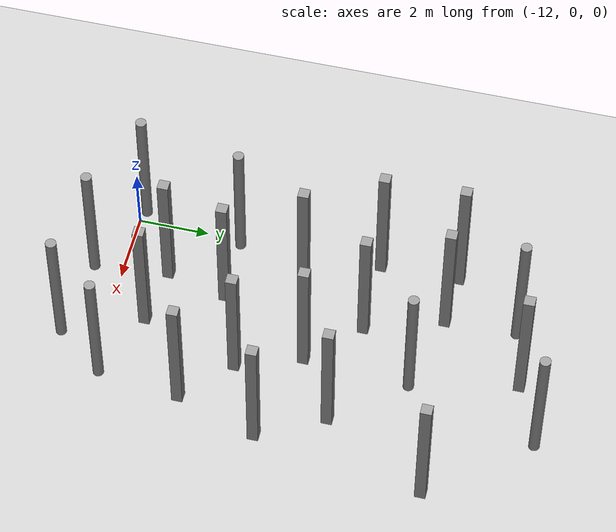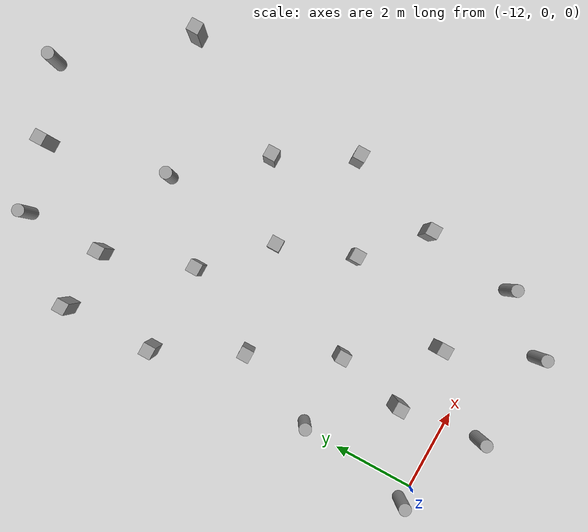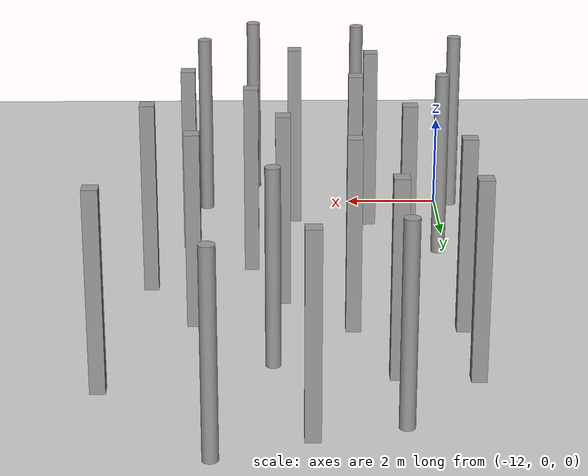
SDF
<sdf version="1.6">
 <world name="default">
  <model name="ground_plane">
   <static>1</static>
   <link name="link">
    <collision name="collision">
     <geometry><plane><normal>0 0 1</normal><size>100 100</size></plane></geometry>
    </collision>
    <visual name="visual">
     <cast_shadows>0</cast_shadows>
     <geometry><plane><normal>0 0 1</normal><size>100 100</size></plane></geometry>
     <material>
      <script><uri>file://media/materials/scripts/gazebo.material</uri><name>Gazebo/Gray</name></script>
     </material>
    </visual>
   </link>
  </model>
  <model name="unit_box_clone_3">
   <link name="link">
    <inertial>
     <mass>1000</mass>
     <inertia><ixx>166.667</ixx><ixy>0</ixy><ixz>0</ixz><iyy>166.667</iyy><iyz>0</iyz><izz>166.667</izz></inertia>
    </inertial>
    <visual name="visual">
     <geometry><box><size>0.3 0.3 4</size></box></geometry>
     <material>
      <script><name>Gazebo/Grey</name><uri>file://media/materials/scripts/gazebo.material</uri></script>
      <shader type="vertex"><normal_map>__default__</normal_map></shader>
      <ambient>0.3 0.3 0.3 1</ambient>
      <diffuse>0.7 0.7 0.7 1</diffuse>
      <specular>0.01 0.01 0.01 1</specular>
      <emissive>0 0 0 1</emissive>
     </material>
    </visual>
    <collision name="collision">
     <geometry><box><size>0.3 0.3 4</size></box></geometry>
     <surface>
      <friction>
       <ode><mu>1</mu><mu2>1</mu2><fdir1>0 0 0</fdir1><slip1>0</slip1><slip2>0</slip2></ode>
       <torsional>
        <coefficient>1</coefficient>
        <patch_radius>0</patch_radius>
        <surface_radius>0</surface_radius>
        <use_patch_radius>1</use_patch_radius>
        <ode><slip>0</slip></ode>
       </torsional>
      </friction>
      <bounce><restitution_coefficient>0</restitution_coefficient><threshold>1e+06</threshold></bounce>
      <contact>
       <collide_without_contact>0</collide_without_contact>
       <collide_without_contact_bitmask>1</collide_without_contact_bitmask>
       <collide_bitmask>1</collide_bitmask>
       <ode>
        <soft_cfm>0</soft_cfm>
        <soft_erp>0.2</soft_erp>
        <kp>1e+13</kp>
        <kd>1</kd>
        <max_vel>0.01</max_vel>
        <min_depth>0</min_depth>
       </ode>
       <bullet>
        <split_impulse>1</split_impulse>
        <split_impulse_penetration_threshold>-0.01</split_impulse_penetration_threshold>
        <soft_cfm>0</soft_cfm>
        <soft_erp>0.2</soft_erp>
        <kp>1e+13</kp>
        <kd>1</kd>
       </bullet>
      </contact>
     </surface>
    </collision>
   </link>
   <static>0</static>
   <pose>-9.81583 6.97363 2 -1.8e-05 -9e-06 -0.002993</pose>
  </model>
  <model name="unit_box_clone_4">
   <link name="link">
    <inertial>
     <mass>1000</mass>
     <inertia><ixx>166.667</ixx><ixy>0</ixy><ixz>0</ixz><iyy>166.667</iyy><iyz>0</iyz><izz>166.667</izz></inertia>
    </inertial>
    <visual name="visual">
     <geometry><box><size>0.3 0.3 4</size></box></geometry>
     <material>
      <script><name>Gazebo/Grey</name><uri>file://media/materials/scripts/gazebo.material</uri></script>
      <shader type="vertex"><normal_map>__default__</normal_map></shader>
      <ambient>0.3 0.3 0.3 1</ambient>
      <diffuse>0.7 0.7 0.7 1</diffuse>
      <specular>0.01 0.01 0.01 1</specular>
      <emissive>0 0 0 1</emissive>
     </material>
    </visual>
    <collision name="collision">
     <geometry><box><size>0.3 0.3 4</size></box></geometry>
     <surface>
      <friction>
       <ode><mu>1</mu><mu2>1</mu2><fdir1>0 0 0</fdir1><slip1>0</slip1><slip2>0</slip2></ode>
       <torsional>
        <coefficient>1</coefficient>
        <patch_radius>0</patch_radius>
        <surface_radius>0</surface_radius>
        <use_patch_radius>1</use_patch_radius>
        <ode><slip>0</slip></ode>
       </torsional>
      </friction>
      <bounce><restitution_coefficient>0</restitution_coefficient><threshold>1e+06</threshold></bounce>
      <contact>
       <collide_without_contact>0</collide_without_contact>
       <collide_without_contact_bitmask>1</collide_without_contact_bitmask>
       <collide_bitmask>1</collide_bitmask>
       <ode>
        <soft_cfm>0</soft_cfm>
        <soft_erp>0.2</soft_erp>
        <kp>1e+13</kp>
        <kd>1</kd>
        <max_vel>0.01</max_vel>
        <min_depth>0</min_depth>
       </ode>
       <bullet>
        <split_impulse>1</split_impulse>
        <split_impulse_penetration_threshold>-0.01</split_impulse_penetration_threshold>
        <soft_cfm>0</soft_cfm>
        <soft_erp>0.2</soft_erp>
        <kp>1e+13</kp>
        <kd>1</kd>
       </bullet>
      </contact>
     </surface>
    </collision>
   </link>
   <static>0</static>
   <pose>-12.064 9.20916 2 -2e-06 4e-06 -0.003091</pose>
  </model>
  <model name="unit_box_clone_8">
   <link name="link">
    <inertial>
     <mass>1000</mass>
     <inertia><ixx>166.667</ixx><ixy>0</ixy><ixz>0</ixz><iyy>166.667</iyy><iyz>0</iyz><izz>166.667</izz></inertia>
    </inertial>
    <visual name="visual">
     <geometry><box><size>0.3 0.3 4</size></box></geometry>
     <material>
      <script><name>Gazebo/Grey</name><uri>file://media/materials/scripts/gazebo.material</uri></script>
      <shader type="vertex"><normal_map>__default__</normal_map></shader>
      <ambient>0.3 0.3 0.3 1</ambient>
      <diffuse>0.7 0.7 0.7 1</diffuse>
      <specular>0.01 0.01 0.01 1</specular>
      <emissive>0 0 0 1</emissive>
     </material>
    </visual>
    <collision name="collision">
     <geometry><box><size>0.3 0.3 4</size></box></geometry>
     <surface>
      <friction>
       <ode><mu>1</mu><mu2>1</mu2><fdir1>0 0 0</fdir1><slip1>0</slip1><slip2>0</slip2></ode>
       <torsional>
        <coefficient>1</coefficient>
        <patch_radius>0</patch_radius>
        <surface_radius>0</surface_radius>
        <use_patch_radius>1</use_patch_radius>
        <ode><slip>0</slip></ode>
       </torsional>
      </friction>
      <bounce><restitution_coefficient>0</restitution_coefficient><threshold>1e+06</threshold></bounce>
      <contact>
       <collide_without_contact>0</collide_without_contact>
       <collide_without_contact_bitmask>1</collide_without_contact_bitmask>
       <collide_bitmask>1</collide_bitmask>
       <ode>
        <soft_cfm>0</soft_cfm>
        <soft_erp>0.2</soft_erp>
        <kp>1e+13</kp>
        <kd>1</kd>
        <max_vel>0.01</max_vel>
        <min_depth>0</min_depth>
       </ode>
       <bullet>
        <split_impulse>1</split_impulse>
        <split_impulse_penetration_threshold>-0.01</split_impulse_penetration_threshold>
        <soft_cfm>0</soft_cfm>
        <soft_erp>0.2</soft_erp>
        <kp>1e+13</kp>
        <kd>1</kd>
       </bullet>
      </contact>
     </surface>
    </collision>
   </link>
   <static>0</static>
   <pose>-6.68888 6.67579 2 -5e-06 -0 -0.003022</pose>
  </model>
  <model name="unit_box_clone_9">
   <link name="link">
    <inertial>
     <mass>1000</mass>
     <inertia><ixx>166.667</ixx><ixy>0</ixy><ixz>0</ixz><iyy>166.667</iyy><iyz>0</iyz><izz>166.667</izz></inertia>
    </inertial>
    <visual name="visual">
     <geometry><box><size>0.3 0.3 4</size></box></geometry>
     <material>
      <script><name>Gazebo/Grey</name><uri>file://media/materials/scripts/gazebo.material</uri></script>
      <shader type="vertex"><normal_map>__default__</normal_map></shader>
      <ambient>0.3 0.3 0.3 1</ambient>
      <diffuse>0.7 0.7 0.7 1</diffuse>
      <specular>0.01 0.01 0.01 1</specular>
      <emissive>0 0 0 1</emissive>
     </material>
    </visual>
    <collision name="collision">
     <geometry><box><size>0.3 0.3 4</size></box></geometry>
     <surface>
      <friction>
       <ode><mu>1</mu><mu2>1</mu2><fdir1>0 0 0</fdir1><slip1>0</slip1><slip2>0</slip2></ode>
       <torsional>
        <coefficient>1</coefficient>
        <patch_radius>0</patch_radius>
        <surface_radius>0</surface_radius>
        <use_patch_radius>1</use_patch_radius>
        <ode><slip>0</slip></ode>
       </torsional>
      </friction>
      <bounce><restitution_coefficient>0</restitution_coefficient><threshold>1e+06</threshold></bounce>
      <contact>
       <collide_without_contact>0</collide_without_contact>
       <collide_without_contact_bitmask>1</collide_without_contact_bitmask>
       <collide_bitmask>1</collide_bitmask>
       <ode>
        <soft_cfm>0</soft_cfm>
        <soft_erp>0.2</soft_erp>
        <kp>1e+13</kp>
        <kd>1</kd>
        <max_vel>0.01</max_vel>
        <min_depth>0</min_depth>
       </ode>
       <bullet>
        <split_impulse>1</split_impulse>
        <split_impulse_penetration_threshold>-0.01</split_impulse_penetration_threshold>
        <soft_cfm>0</soft_cfm>
        <soft_erp>0.2</soft_erp>
        <kp>1e+13</kp>
        <kd>1</kd>
       </bullet>
      </contact>
     </surface>
    </collision>
   </link>
   <static>0</static>
   <pose>-8.44972 5.60761 2 1.2e-05 2e-06 -0.001522</pose>
  </model>
  <model name="unit_box_clone_10">
   <link name="link">
    <inertial>
     <mass>1000</mass>
     <inertia><ixx>166.667</ixx><ixy>0</ixy><ixz>0</ixz><iyy>166.667</iyy><iyz>0</iyz><izz>166.667</izz></inertia>
    </inertial>
    <visual name="visual">
     <geometry><box><size>0.3 0.3 4</size></box></geometry>
     <material>
      <script><name>Gazebo/Grey</name><uri>file://media/materials/scripts/gazebo.material</uri></script>
      <shader type="vertex"><normal_map>__default__</normal_map></shader>
      <ambient>0.3 0.3 0.3 1</ambient>
      <diffuse>0.7 0.7 0.7 1</diffuse>
      <specular>0.01 0.01 0.01 1</specular>
      <emissive>0 0 0 1</emissive>
     </material>
    </visual>
    <collision name="collision">
     <geometry><box><size>0.3 0.3 4</size></box></geometry>
     <surface>
      <friction>
       <ode><mu>1</mu><mu2>1</mu2><fdir1>0 0 0</fdir1><slip1>0</slip1><slip2>0</slip2></ode>
       <torsional>
        <coefficient>1</coefficient>
        <patch_radius>0</patch_radius>
        <surface_radius>0</surface_radius>
        <use_patch_radius>1</use_patch_radius>
        <ode><slip>0</slip></ode>
       </torsional>
      </friction>
      <bounce><restitution_coefficient>0</restitution_coefficient><threshold>1e+06</threshold></bounce>
      <contact>
       <collide_without_contact>0</collide_without_contact>
       <collide_without_contact_bitmask>1</collide_without_contact_bitmask>
       <collide_bitmask>1</collide_bitmask>
       <ode>
        <soft_cfm>0</soft_cfm>
        <soft_erp>0.2</soft_erp>
        <kp>1e+13</kp>
        <kd>1</kd>
        <max_vel>0.01</max_vel>
        <min_depth>0</min_depth>
       </ode>
       <bullet>
        <split_impulse>1</split_impulse>
        <split_impulse_penetration_threshold>-0.01</split_impulse_penetration_threshold>
        <soft_cfm>0</soft_cfm>
        <soft_erp>0.2</soft_erp>
        <kp>1e+13</kp>
        <kd>1</kd>
       </bullet>
      </contact>
     </surface>
    </collision>
   </link>
   <static>0</static>
   <pose>-8.91738 11.4995 2 4e-06 -0 -0.003322</pose>
  </model>
  <model name="unit_box_clone_11">
   <link name="link">
    <inertial>
     <mass>1000</mass>
     <inertia><ixx>166.667</ixx><ixy>0</ixy><ixz>0</ixz><iyy>166.667</iyy><iyz>0</iyz><izz>166.667</izz></inertia>
    </inertial>
    <visual name="visual">
     <geometry><box><size>0.3 0.3 4</size></box></geometry>
     <material>
      <script><name>Gazebo/Grey</name><uri>file://media/materials/scripts/gazebo.material</uri></script>
      <shader type="vertex"><normal_map>__default__</normal_map></shader>
      <ambient>0.3 0.3 0.3 1</ambient>
      <diffuse>0.7 0.7 0.7 1</diffuse>
      <specular>0.01 0.01 0.01 1</specular>
      <emissive>0 0 0 1</emissive>
     </material>
    </visual>
    <collision name="collision">
     <geometry><box><size>0.3 0.3 4</size></box></geometry>
     <surface>
      <friction>
       <ode><mu>1</mu><mu2>1</mu2><fdir1>0 0 0</fdir1><slip1>0</slip1><slip2>0</slip2></ode>
       <torsional>
        <coefficient>1</coefficient>
        <patch_radius>0</patch_radius>
        <surface_radius>0</surface_radius>
        <use_patch_radius>1</use_patch_radius>
        <ode><slip>0</slip></ode>
       </torsional>
      </friction>
      <bounce><restitution_coefficient>0</restitution_coefficient><threshold>1e+06</threshold></bounce>
      <contact>
       <collide_without_contact>0</collide_without_contact>
       <collide_without_contact_bitmask>1</collide_without_contact_bitmask>
       <collide_bitmask>1</collide_bitmask>
       <ode>
        <soft_cfm>0</soft_cfm>
        <soft_erp>0.2</soft_erp>
        <kp>1e+13</kp>
        <kd>1</kd>
        <max_vel>0.01</max_vel>
        <min_depth>0</min_depth>
       </ode>
       <bullet>
        <split_impulse>1</split_impulse>
        <split_impulse_penetration_threshold>-0.01</split_impulse_penetration_threshold>
        <soft_cfm>0</soft_cfm>
        <soft_erp>0.2</soft_erp>
        <kp>1e+13</kp>
        <kd>1</kd>
       </bullet>
      </contact>
     </surface>
    </collision>
   </link>
   <static>0</static>
   <pose>-10.559 9.10964 2 -2e-06 6e-06 0.004379</pose>
  </model>
  <model name="unit_box_clone_12">
   <link name="link">
    <inertial>
     <mass>1000</mass>
     <inertia><ixx>166.667</ixx><ixy>0</ixy><ixz>0</ixz><iyy>166.667</iyy><iyz>0</iyz><izz>166.667</izz></inertia>
    </inertial>
    <visual name="visual">
     <geometry><box><size>0.3 0.3 4</size></box></geometry>
     <material>
      <script><name>Gazebo/Grey</name><uri>file://media/materials/scripts/gazebo.material</uri></script>
      <shader type="vertex"><normal_map>__default__</normal_map></shader>
      <ambient>0.3 0.3 0.3 1</ambient>
      <diffuse>0.7 0.7 0.7 1</diffuse>
      <specular>0.01 0.01 0.01 1</specular>
      <emissive>0 0 0 1</emissive>
     </material>
    </visual>
    <collision name="collision">
     <geometry><box><size>0.3 0.3 4</size></box></geometry>
     <surface>
      <friction>
       <ode><mu>1</mu><mu2>1</mu2><fdir1>0 0 0</fdir1><slip1>0</slip1><slip2>0</slip2></ode>
       <torsional>
        <coefficient>1</coefficient>
        <patch_radius>0</patch_radius>
        <surface_radius>0</surface_radius>
        <use_patch_radius>1</use_patch_radius>
        <ode><slip>0</slip></ode>
       </torsional>
      </friction>
      <bounce><restitution_coefficient>0</restitution_coefficient><threshold>1e+06</threshold></bounce>
      <contact>
       <collide_without_contact>0</collide_without_contact>
       <collide_without_contact_bitmask>1</collide_without_contact_bitmask>
       <collide_bitmask>1</collide_bitmask>
       <ode>
        <soft_cfm>0</soft_cfm>
        <soft_erp>0.2</soft_erp>
        <kp>1e+13</kp>
        <kd>1</kd>
        <max_vel>0.01</max_vel>
        <min_depth>0</min_depth>
       </ode>
       <bullet>
        <split_impulse>1</split_impulse>
        <split_impulse_penetration_threshold>-0.01</split_impulse_penetration_threshold>
        <soft_cfm>0</soft_cfm>
        <soft_erp>0.2</soft_erp>
        <kp>1e+13</kp>
        <kd>1</kd>
       </bullet>
      </contact>
     </surface>
    </collision>
   </link>
   <static>0</static>
   <pose>-6.46638 2.58977 2 6e-06 -1.6e-05 -0.001869</pose>
  </model>
  <model name="unit_box_clone_13">
   <link name="link">
    <inertial>
     <mass>1000</mass>
     <inertia><ixx>166.667</ixx><ixy>0</ixy><ixz>0</ixz><iyy>166.667</iyy><iyz>0</iyz><izz>166.667</izz></inertia>
    </inertial>
    <visual name="visual">
     <geometry><box><size>0.3 0.3 4</size></box></geometry>
     <material>
      <script><name>Gazebo/Grey</name><uri>file://media/materials/scripts/gazebo.material</uri></script>
      <shader type="vertex"><normal_map>__default__</normal_map></shader>
      <ambient>0.3 0.3 0.3 1</ambient>
      <diffuse>0.7 0.7 0.7 1</diffuse>
      <specular>0.01 0.01 0.01 1</specular>
      <emissive>0 0 0 1</emissive>
     </material>
    </visual>
    <collision name="collision">
     <geometry><box><size>0.3 0.3 4</size></box></geometry>
     <surface>
      <friction>
       <ode><mu>1</mu><mu2>1</mu2><fdir1>0 0 0</fdir1><slip1>0</slip1><slip2>0</slip2></ode>
       <torsional>
        <coefficient>1</coefficient>
        <patch_radius>0</patch_radius>
        <surface_radius>0</surface_radius>
        <use_patch_radius>1</use_patch_radius>
        <ode><slip>0</slip></ode>
       </torsional>
      </friction>
      <bounce><restitution_coefficient>0</restitution_coefficient><threshold>1e+06</threshold></bounce>
      <contact>
       <collide_without_contact>0</collide_without_contact>
       <collide_without_contact_bitmask>1</collide_without_contact_bitmask>
       <collide_bitmask>1</collide_bitmask>
       <ode>
        <soft_cfm>0</soft_cfm>
        <soft_erp>0.2</soft_erp>
        <kp>1e+13</kp>
        <kd>1</kd>
        <max_vel>0.01</max_vel>
        <min_depth>0</min_depth>
       </ode>
       <bullet>
        <split_impulse>1</split_impulse>
        <split_impulse_penetration_threshold>-0.01</split_impulse_penetration_threshold>
        <soft_cfm>0</soft_cfm>
        <soft_erp>0.2</soft_erp>
        <kp>1e+13</kp>
        <kd>1</kd>
       </bullet>
      </contact>
     </surface>
    </collision>
   </link>
   <static>0</static>
   <pose>-10.0001 3.0001 2 -1e-06 -7e-06 -0.003577</pose>
  </model>
  <model name="unit_box_clone_14">
   <link name="link">
    <inertial>
     <mass>1000</mass>
     <inertia><ixx>166.667</ixx><ixy>0</ixy><ixz>0</ixz><iyy>166.667</iyy><iyz>0</iyz><izz>166.667</izz></inertia>
    </inertial>
    <visual name="visual">
     <geometry><box><size>0.3 0.3 4</size></box></geometry>
     <material>
      <script><name>Gazebo/Grey</name><uri>file://media/materials/scripts/gazebo.material</uri></script>
      <shader type="vertex"><normal_map>__default__</normal_map></shader>
      <ambient>0.3 0.3 0.3 1</ambient>
      <diffuse>0.7 0.7 0.7 1</diffuse>
      <specular>0.01 0.01 0.01 1</specular>
      <emissive>0 0 0 1</emissive>
     </material>
    </visual>
    <collision name="collision">
     <geometry><box><size>0.3 0.3 4</size></box></geometry>
     <surface>
      <friction>
       <ode><mu>1</mu><mu2>1</mu2><fdir1>0 0 0</fdir1><slip1>0</slip1><slip2>0</slip2></ode>
       <torsional>
        <coefficient>1</coefficient>
        <patch_radius>0</patch_radius>
        <surface_radius>0</surface_radius>
        <use_patch_radius>1</use_patch_radius>
        <ode><slip>0</slip></ode>
       </torsional>
      </friction>
      <bounce><restitution_coefficient>0</restitution_coefficient><threshold>1e+06</threshold></bounce>
      <contact>
       <collide_without_contact>0</collide_without_contact>
       <collide_without_contact_bitmask>1</collide_without_contact_bitmask>
       <collide_bitmask>1</collide_bitmask>
       <ode>
        <soft_cfm>0</soft_cfm>
        <soft_erp>0.2</soft_erp>
        <kp>1e+13</kp>
        <kd>1</kd>
        <max_vel>0.01</max_vel>
        <min_depth>0</min_depth>
       </ode>
       <bullet>
        <split_impulse>1</split_impulse>
        <split_impulse_penetration_threshold>-0.01</split_impulse_penetration_threshold>
        <soft_cfm>0</soft_cfm>
        <soft_erp>0.2</soft_erp>
        <kp>1e+13</kp>
        <kd>1</kd>
       </bullet>
      </contact>
     </surface>
    </collision>
   </link>
   <static>0</static>
   <pose>-11.9999 7.00014 2 -9e-06 -2e-06 -0.001109</pose>
  </model>
  <model name="unit_box_clone_15">
   <link name="link">
    <inertial>
     <mass>1000</mass>
     <inertia><ixx>166.667</ixx><ixy>0</ixy><ixz>0</ixz><iyy>166.667</iyy><iyz>0</iyz><izz>166.667</izz></inertia>
    </inertial>
    <visual name="visual">
     <geometry><box><size>0.3 0.3 4</size></box></geometry>
     <material>
      <script><name>Gazebo/Grey</name><uri>file://media/materials/scripts/gazebo.material</uri></script>
      <shader type="vertex"><normal_map>__default__</normal_map></shader>
      <ambient>0.3 0.3 0.3 1</ambient>
      <diffuse>0.7 0.7 0.7 1</diffuse>
      <specular>0.01 0.01 0.01 1</specular>
      <emissive>0 0 0 1</emissive>
     </material>
    </visual>
    <collision name="collision">
     <geometry><box><size>0.3 0.3 4</size></box></geometry>
     <surface>
      <friction>
       <ode><mu>1</mu><mu2>1</mu2><fdir1>0 0 0</fdir1><slip1>0</slip1><slip2>0</slip2></ode>
       <torsional>
        <coefficient>1</coefficient>
        <patch_radius>0</patch_radius>
        <surface_radius>0</surface_radius>
        <use_patch_radius>1</use_patch_radius>
        <ode><slip>0</slip></ode>
       </torsional>
      </friction>
      <bounce><restitution_coefficient>0</restitution_coefficient><threshold>1e+06</threshold></bounce>
      <contact>
       <collide_without_contact>0</collide_without_contact>
       <collide_without_contact_bitmask>1</collide_without_contact_bitmask>
       <collide_bitmask>1</collide_bitmask>
       <ode>
        <soft_cfm>0</soft_cfm>
        <soft_erp>0.2</soft_erp>
        <kp>1e+13</kp>
        <kd>1</kd>
        <max_vel>0.01</max_vel>
        <min_depth>0</min_depth>
       </ode>
       <bullet>
        <split_impulse>1</split_impulse>
        <split_impulse_penetration_threshold>-0.01</split_impulse_penetration_threshold>
        <soft_cfm>0</soft_cfm>
        <soft_erp>0.2</soft_erp>
        <kp>1e+13</kp>
        <kd>1</kd>
       </bullet>
      </contact>
     </surface>
    </collision>
   </link>
   <static>0</static>
   <pose>-8.74152 1.0488 2 -2e-06 0 0.000224</pose>
  </model>
  <model name="unit_box_clone_16">
   <link name="link">
    <inertial>
     <mass>1000</mass>
     <inertia><ixx>166.667</ixx><ixy>0</ixy><ixz>0</ixz><iyy>166.667</iyy><iyz>0</iyz><izz>166.667</izz></inertia>
    </inertial>
    <visual name="visual">
     <geometry><box><size>0.3 0.3 4</size></box></geometry>
     <material>
      <script><name>Gazebo/Grey</name><uri>file://media/materials/scripts/gazebo.material</uri></script>
      <shader type="vertex"><normal_map>__default__</normal_map></shader>
      <ambient>0.3 0.3 0.3 1</ambient>
      <diffuse>0.7 0.7 0.7 1</diffuse>
      <specular>0.01 0.01 0.01 1</specular>
      <emissive>0 0 0 1</emissive>
     </material>
    </visual>
    <collision name="collision">
     <geometry><box><size>0.3 0.3 4</size></box></geometry>
     <surface>
      <friction>
       <ode><mu>1</mu><mu2>1</mu2><fdir1>0 0 0</fdir1><slip1>0</slip1><slip2>0</slip2></ode>
       <torsional>
        <coefficient>1</coefficient>
        <patch_radius>0</patch_radius>
        <surface_radius>0</surface_radius>
        <use_patch_radius>1</use_patch_radius>
        <ode><slip>0</slip></ode>
       </torsional>
      </friction>
      <bounce><restitution_coefficient>0</restitution_coefficient><threshold>1e+06</threshold></bounce>
      <contact>
       <collide_without_contact>0</collide_without_contact>
       <collide_without_contact_bitmask>1</collide_without_contact_bitmask>
       <collide_bitmask>1</collide_bitmask>
       <ode>
        <soft_cfm>0</soft_cfm>
        <soft_erp>0.2</soft_erp>
        <kp>1e+13</kp>
        <kd>1</kd>
        <max_vel>0.01</max_vel>
        <min_depth>0</min_depth>
       </ode>
       <bullet>
        <split_impulse>1</split_impulse>
        <split_impulse_penetration_threshold>-0.01</split_impulse_penetration_threshold>
        <soft_cfm>0</soft_cfm>
        <soft_erp>0.2</soft_erp>
        <kp>1e+13</kp>
        <kd>1</kd>
       </bullet>
      </contact>
     </surface>
    </collision>
   </link>
   <static>0</static>
   <pose>-10.9999 5.00014 2 -9e-06 -2e-06 -0.001109</pose>
  </model>
  <model name="unit_box_clone_18">
   <link name="link">
    <inertial>
     <mass>1000</mass>
     <inertia><ixx>166.667</ixx><ixy>0</ixy><ixz>0</ixz><iyy>166.667</iyy><iyz>0</iyz><izz>166.667</izz></inertia>
    </inertial>
    <visual name="visual">
     <geometry><box><size>0.3 0.3 4</size></box></geometry>
     <material>
      <script><name>Gazebo/Grey</name><uri>file://media/materials/scripts/gazebo.material</uri></script>
      <shader type="vertex"><normal_map>__default__</normal_map></shader>
      <ambient>0.3 0.3 0.3 1</ambient>
      <diffuse>0.7 0.7 0.7 1</diffuse>
      <specular>0.01 0.01 0.01 1</specular>
      <emissive>0 0 0 1</emissive>
     </material>
    </visual>
    <collision name="collision">
     <geometry><box><size>0.3 0.3 4</size></box></geometry>
     <surface>
      <friction>
       <ode><mu>1</mu><mu2>1</mu2><fdir1>0 0 0</fdir1><slip1>0</slip1><slip2>0</slip2></ode>
       <torsional>
        <coefficient>1</coefficient>
        <patch_radius>0</patch_radius>
        <surface_radius>0</surface_radius>
        <use_patch_radius>1</use_patch_radius>
        <ode><slip>0</slip></ode>
       </torsional>
      </friction>
      <bounce><restitution_coefficient>0</restitution_coefficient><threshold>1e+06</threshold></bounce>
      <contact>
       <collide_without_contact>0</collide_without_contact>
       <collide_without_contact_bitmask>1</collide_without_contact_bitmask>
       <collide_bitmask>1</collide_bitmask>
       <ode>
        <soft_cfm>0</soft_cfm>
        <soft_erp>0.2</soft_erp>
        <kp>1e+13</kp>
        <kd>1</kd>
        <max_vel>0.01</max_vel>
        <min_depth>0</min_depth>
       </ode>
       <bullet>
        <split_impulse>1</split_impulse>
        <split_impulse_penetration_threshold>-0.01</split_impulse_penetration_threshold>
        <soft_cfm>0</soft_cfm>
        <soft_erp>0.2</soft_erp>
        <kp>1e+13</kp>
        <kd>1</kd>
       </bullet>
      </contact>
     </surface>
    </collision>
   </link>
   <static>0</static>
   <pose>-5.73009 4.87577 2 -3e-06 -7e-06 -0.001141</pose>
  </model>
  <model name="unit_box_clone_23">
   <link name="link">
    <inertial>
     <mass>1000</mass>
     <inertia><ixx>166.667</ixx><ixy>0</ixy><ixz>0</ixz><iyy>166.667</iyy><iyz>0</iyz><izz>166.667</izz></inertia>
    </inertial>
    <visual name="visual">
     <geometry><box><size>0.3 0.3 4</size></box></geometry>
     <material>
      <script><name>Gazebo/Grey</name><uri>file://media/materials/scripts/gazebo.material</uri></script>
      <shader type="vertex"><normal_map>__default__</normal_map></shader>
      <ambient>0.3 0.3 0.3 1</ambient>
      <diffuse>0.7 0.7 0.7 1</diffuse>
      <specular>0.01 0.01 0.01 1</specular>
      <emissive>0 0 0 1</emissive>
     </material>
    </visual>
    <collision name="collision">
     <geometry><box><size>0.3 0.3 4</size></box></geometry>
     <surface>
      <friction>
       <ode><mu>1</mu><mu2>1</mu2><fdir1>0 0 0</fdir1><slip1>0</slip1><slip2>0</slip2></ode>
       <torsional>
        <coefficient>1</coefficient>
        <patch_radius>0</patch_radius>
        <surface_radius>0</surface_radius>
        <use_patch_radius>1</use_patch_radius>
        <ode><slip>0</slip></ode>
       </torsional>
      </friction>
      <bounce><restitution_coefficient>0</restitution_coefficient><threshold>1e+06</threshold></bounce>
      <contact>
       <collide_without_contact>0</collide_without_contact>
       <collide_without_contact_bitmask>1</collide_without_contact_bitmask>
       <collide_bitmask>1</collide_bitmask>
       <ode>
        <soft_cfm>0</soft_cfm>
        <soft_erp>0.2</soft_erp>
        <kp>1e+13</kp>
        <kd>1</kd>
        <max_vel>0.01</max_vel>
        <min_depth>0</min_depth>
       </ode>
       <bullet>
        <split_impulse>1</split_impulse>
        <split_impulse_penetration_threshold>-0.01</split_impulse_penetration_threshold>
        <soft_cfm>0</soft_cfm>
        <soft_erp>0.2</soft_erp>
        <kp>1e+13</kp>
        <kd>1</kd>
       </bullet>
      </contact>
     </surface>
    </collision>
   </link>
   <static>0</static>
   <pose>-5.0023 9.59192 2 0 -2.8e-05 -0.003958</pose>
  </model>
  <model name="unit_box_clone_28">
   <link name="link">
    <inertial>
     <mass>1000</mass>
     <inertia><ixx>166.667</ixx><ixy>0</ixy><ixz>0</ixz><iyy>166.667</iyy><iyz>0</iyz><izz>166.667</izz></inertia>
    </inertial>
    <visual name="visual">
     <geometry><box><size>0.3 0.3 4</size></box></geometry>
     <material>
      <script><name>Gazebo/Grey</name><uri>file://media/materials/scripts/gazebo.material</uri></script>
      <shader type="vertex"><normal_map>__default__</normal_map></shader>
      <ambient>0.3 0.3 0.3 1</ambient>
      <diffuse>0.7 0.7 0.7 1</diffuse>
      <specular>0.01 0.01 0.01 1</specular>
      <emissive>0 0 0 1</emissive>
     </material>
    </visual>
    <collision name="collision">
     <geometry><box><size>0.3 0.3 4</size></box></geometry>
     <surface>
      <friction>
       <ode><mu>1</mu><mu2>1</mu2><fdir1>0 0 0</fdir1><slip1>0</slip1><slip2>0</slip2></ode>
       <torsional>
        <coefficient>1</coefficient>
        <patch_radius>0</patch_radius>
        <surface_radius>0</surface_radius>
        <use_patch_radius>1</use_patch_radius>
        <ode><slip>0</slip></ode>
       </torsional>
      </friction>
      <bounce><restitution_coefficient>0</restitution_coefficient><threshold>1e+06</threshold></bounce>
      <contact>
       <collide_without_contact>0</collide_without_contact>
       <collide_without_contact_bitmask>1</collide_without_contact_bitmask>
       <collide_bitmask>1</collide_bitmask>
       <ode>
        <soft_cfm>0</soft_cfm>
        <soft_erp>0.2</soft_erp>
        <kp>1e+13</kp>
        <kd>1</kd>
        <max_vel>0.01</max_vel>
        <min_depth>0</min_depth>
       </ode>
       <bullet>
        <split_impulse>1</split_impulse>
        <split_impulse_penetration_threshold>-0.01</split_impulse_penetration_threshold>
        <soft_cfm>0</soft_cfm>
        <soft_erp>0.2</soft_erp>
        <kp>1e+13</kp>
        <kd>1</kd>
       </bullet>
      </contact>
     </surface>
    </collision>
   </link>
   <static>0</static>
   <pose>-7.80117 3.82477 2 0 -1e-06 -0.004189</pose>
  </model>
  <model name="unit_cylinder_clone_1_clone_3">
   <link name="link">
    <inertial>
     <mass>1000</mass>
     <inertia><ixx>145.833</ixx><ixy>0</ixy><ixz>0</ixz><iyy>145.833</iyy><iyz>0</iyz><izz>125</izz></inertia>
    </inertial>
    <visual name="visual">
     <geometry><cylinder><radius>0.15</radius><length>4</length></cylinder></geometry>
     <material>
      <script><name>Gazebo/Grey</name><uri>file://media/materials/scripts/gazebo.material</uri></script>
      <shader type="vertex"><normal_map>__default__</normal_map></shader>
      <ambient>0.3 0.3 0.3 1</ambient>
      <diffuse>0.7 0.7 0.7 1</diffuse>
      <specular>0.01 0.01 0.01 1</specular>
      <emissive>0 0 0 1</emissive>
     </material>
    </visual>
    <collision name="collision">
     <geometry><cylinder><radius>0.15</radius><length>4</length></cylinder></geometry>
     <surface>
      <friction>
       <ode><mu>1</mu><mu2>1</mu2><fdir1>0 0 0</fdir1><slip1>0</slip1><slip2>0</slip2></ode>
       <torsional>
        <coefficient>1</coefficient>
        <patch_radius>0</patch_radius>
        <surface_radius>0</surface_radius>
        <use_patch_radius>1</use_patch_radius>
        <ode><slip>0</slip></ode>
       </torsional>
      </friction>
      <bounce><restitution_coefficient>0</restitution_coefficient><threshold>1e+06</threshold></bounce>
      <contact>
       <collide_without_contact>0</collide_without_contact>
       <collide_without_contact_bitmask>1</collide_without_contact_bitmask>
       <collide_bitmask>1</collide_bitmask>
       <ode>
        <soft_cfm>0</soft_cfm>
        <soft_erp>0.2</soft_erp>
        <kp>1e+13</kp>
        <kd>1</kd>
        <max_vel>0.01</max_vel>
        <min_depth>0</min_depth>
       </ode>
       <bullet>
        <split_impulse>1</split_impulse>
        <split_impulse_penetration_threshold>-0.01</split_impulse_penetration_threshold>
        <soft_cfm>0</soft_cfm>
        <soft_erp>0.2</soft_erp>
        <kp>1e+13</kp>
        <kd>1</kd>
       </bullet>
      </contact>
     </surface>
    </collision>
   </link>
   <static>0</static>
   <pose>-7.82414 -1.09462 1.99998 -1e-06 1e-06 -0.495552</pose>
  </model>
  <model name="unit_cylinder_clone_1_clone_12">
   <link name="link">
    <inertial>
     <mass>1000</mass>
     <inertia><ixx>145.833</ixx><ixy>0</ixy><ixz>0</ixz><iyy>145.833</iyy><iyz>0</iyz><izz>125</izz></inertia>
    </inertial>
    <visual name="visual">
     <geometry><cylinder><radius>0.15</radius><length>4</length></cylinder></geometry>
     <material>
      <script><name>Gazebo/Grey</name><uri>file://media/materials/scripts/gazebo.material</uri></script>
      <shader type="vertex"><normal_map>__default__</normal_map></shader>
      <ambient>0.3 0.3 0.3 1</ambient>
      <diffuse>0.7 0.7 0.7 1</diffuse>
      <specular>0.01 0.01 0.01 1</specular>
      <emissive>0 0 0 1</emissive>
     </material>
    </visual>
    <collision name="collision">
     <geometry><cylinder><radius>0.15</radius><length>4</length></cylinder></geometry>
     <surface>
      <friction>
       <ode><mu>1</mu><mu2>1</mu2><fdir1>0 0 0</fdir1><slip1>0</slip1><slip2>0</slip2></ode>
       <torsional>
        <coefficient>1</coefficient>
        <patch_radius>0</patch_radius>
        <surface_radius>0</surface_radius>
        <use_patch_radius>1</use_patch_radius>
        <ode><slip>0</slip></ode>
       </torsional>
      </friction>
      <bounce><restitution_coefficient>0</restitution_coefficient><threshold>1e+06</threshold></bounce>
      <contact>
       <collide_without_contact>0</collide_without_contact>
       <collide_without_contact_bitmask>1</collide_without_contact_bitmask>
       <collide_bitmask>1</collide_bitmask>
       <ode>
        <soft_cfm>0</soft_cfm>
        <soft_erp>0.2</soft_erp>
        <kp>1e+13</kp>
        <kd>1</kd>
        <max_vel>0.01</max_vel>
        <min_depth>0</min_depth>
       </ode>
       <bullet>
        <split_impulse>1</split_impulse>
        <split_impulse_penetration_threshold>-0.01</split_impulse_penetration_threshold>
        <soft_cfm>0</soft_cfm>
        <soft_erp>0.2</soft_erp>
        <kp>1e+13</kp>
        <kd>1</kd>
       </bullet>
      </contact>
     </surface>
    </collision>
   </link>
   <static>0</static>
   <pose>-6.74966 0.269702 1.99995 -0.000268 4.9e-05 -0.614847</pose>
  </model>
  <model name="unit_cylinder_clone_1_clone_14">
   <link name="link">
    <inertial>
     <mass>1000</mass>
     <inertia><ixx>145.833</ixx><ixy>0</ixy><ixz>0</ixz><iyy>145.833</iyy><iyz>0</iyz><izz>125</izz></inertia>
    </inertial>
    <visual name="visual">
     <geometry><cylinder><radius>0.15</radius><length>4</length></cylinder></geometry>
     <material>
      <script><name>Gazebo/Grey</name><uri>file://media/materials/scripts/gazebo.material</uri></script>
      <shader type="vertex"><normal_map>__default__</normal_map></shader>
      <ambient>0.3 0.3 0.3 1</ambient>
      <diffuse>0.7 0.7 0.7 1</diffuse>
      <specular>0.01 0.01 0.01 1</specular>
      <emissive>0 0 0 1</emissive>
     </material>
    </visual>
    <collision name="collision">
     <geometry><cylinder><radius>0.15</radius><length>4</length></cylinder></geometry>
     <surface>
      <friction>
       <ode><mu>1</mu><mu2>1</mu2><fdir1>0 0 0</fdir1><slip1>0</slip1><slip2>0</slip2></ode>
       <torsional>
        <coefficient>1</coefficient>
        <patch_radius>0</patch_radius>
        <surface_radius>0</surface_radius>
        <use_patch_radius>1</use_patch_radius>
        <ode><slip>0</slip></ode>
       </torsional>
      </friction>
      <bounce><restitution_coefficient>0</restitution_coefficient><threshold>1e+06</threshold></bounce>
      <contact>
       <collide_without_contact>0</collide_without_contact>
       <collide_without_contact_bitmask>1</collide_without_contact_bitmask>
       <collide_bitmask>1</collide_bitmask>
       <ode>
        <soft_cfm>0</soft_cfm>
        <soft_erp>0.2</soft_erp>
        <kp>1e+13</kp>
        <kd>1</kd>
        <max_vel>0.01</max_vel>
        <min_depth>0</min_depth>
       </ode>
       <bullet>
        <split_impulse>1</split_impulse>
        <split_impulse_penetration_threshold>-0.01</split_impulse_penetration_threshold>
        <soft_cfm>0</soft_cfm>
        <soft_erp>0.2</soft_erp>
        <kp>1e+13</kp>
        <kd>1</kd>
       </bullet>
      </contact>
     </surface>
    </collision>
   </link>
   <static>0</static>
   <pose>-10.182 -0.808409 1.99995 -0.000268 4.8e-05 -0.61788</pose>
  </model>
  <model name="unit_cylinder_clone_1_clone_7_clone_0">
   <link name="link">
    <inertial>
     <mass>1000</mass>
     <inertia><ixx>145.833</ixx><ixy>0</ixy><ixz>0</ixz><iyy>145.833</iyy><iyz>0</iyz><izz>125</izz></inertia>
    </inertial>
    <visual name="visual">
     <geometry><cylinder><radius>0.15</radius><length>4</length></cylinder></geometry>
     <material>
      <script><name>Gazebo/Grey</name><uri>file://media/materials/scripts/gazebo.material</uri></script>
      <shader type="vertex"><normal_map>__default__</normal_map></shader>
      <ambient>0.3 0.3 0.3 1</ambient>
      <diffuse>0.7 0.7 0.7 1</diffuse>
      <specular>0.01 0.01 0.01 1</specular>
      <emissive>0 0 0 1</emissive>
     </material>
    </visual>
    <collision name="collision">
     <geometry><cylinder><radius>0.15</radius><length>4</length></cylinder></geometry>
     <surface>
      <friction>
       <ode><mu>1</mu><mu2>1</mu2><fdir1>0 0 0</fdir1><slip1>0</slip1><slip2>0</slip2></ode>
       <torsional>
        <coefficient>1</coefficient>
        <patch_radius>0</patch_radius>
        <surface_radius>0</surface_radius>
        <use_patch_radius>1</use_patch_radius>
        <ode><slip>0</slip></ode>
       </torsional>
      </friction>
      <bounce><restitution_coefficient>0</restitution_coefficient><threshold>1e+06</threshold></bounce>
      <contact>
       <collide_without_contact>0</collide_without_contact>
       <collide_without_contact_bitmask>1</collide_without_contact_bitmask>
       <collide_bitmask>1</collide_bitmask>
       <ode>
        <soft_cfm>0</soft_cfm>
        <soft_erp>0.2</soft_erp>
        <kp>1e+13</kp>
        <kd>1</kd>
        <max_vel>0.01</max_vel>
        <min_depth>0</min_depth>
       </ode>
       <bullet>
        <split_impulse>1</split_impulse>
        <split_impulse_penetration_threshold>-0.01</split_impulse_penetration_threshold>
        <soft_cfm>0</soft_cfm>
        <soft_erp>0.2</soft_erp>
        <kp>1e+13</kp>
        <kd>1</kd>
       </bullet>
      </contact>
     </surface>
    </collision>
   </link>
   <static>0</static>
   <pose>-7.14093 12.2298 1.99995 -0.000268 4.9e-05 -0.61471</pose>
  </model>
  <model name="unit_cylinder_clone_1_clone_7_clone_3">
   <link name="link">
    <inertial>
     <mass>1000</mass>
     <inertia><ixx>145.833</ixx><ixy>0</ixy><ixz>0</ixz><iyy>145.833</iyy><iyz>0</iyz><izz>125</izz></inertia>
    </inertial>
    <visual name="visual">
     <geometry><cylinder><radius>0.15</radius><length>4</length></cylinder></geometry>
     <material>
      <script><name>Gazebo/Grey</name><uri>file://media/materials/scripts/gazebo.material</uri></script>
      <shader type="vertex"><normal_map>__default__</normal_map></shader>
      <ambient>0.3 0.3 0.3 1</ambient>
      <diffuse>0.7 0.7 0.7 1</diffuse>
      <specular>0.01 0.01 0.01 1</specular>
      <emissive>0 0 0 1</emissive>
     </material>
    </visual>
    <collision name="collision">
     <geometry><cylinder><radius>0.15</radius><length>4</length></cylinder></geometry>
     <surface>
      <friction>
       <ode><mu>1</mu><mu2>1</mu2><fdir1>0 0 0</fdir1><slip1>0</slip1><slip2>0</slip2></ode>
       <torsional>
        <coefficient>1</coefficient>
        <patch_radius>0</patch_radius>
        <surface_radius>0</surface_radius>
        <use_patch_radius>1</use_patch_radius>
        <ode><slip>0</slip></ode>
       </torsional>
      </friction>
      <bounce><restitution_coefficient>0</restitution_coefficient><threshold>1e+06</threshold></bounce>
      <contact>
       <collide_without_contact>0</collide_without_contact>
       <collide_without_contact_bitmask>1</collide_without_contact_bitmask>
       <collide_bitmask>1</collide_bitmask>
       <ode>
        <soft_cfm>0</soft_cfm>
        <soft_erp>0.2</soft_erp>
        <kp>1e+13</kp>
        <kd>1</kd>
        <max_vel>0.01</max_vel>
        <min_depth>0</min_depth>
       </ode>
       <bullet>
        <split_impulse>1</split_impulse>
        <split_impulse_penetration_threshold>-0.01</split_impulse_penetration_threshold>
        <soft_cfm>0</soft_cfm>
        <soft_erp>0.2</soft_erp>
        <kp>1e+13</kp>
        <kd>1</kd>
       </bullet>
      </contact>
     </surface>
    </collision>
   </link>
   <static>0</static>
   <pose>-12.3405 0.121131 1.99995 -0.000268 4.9e-05 -0.612263</pose>
  </model>
  <model name="unit_cylinder_clone_1_clone_7_clone_5">
   <link name="link">
    <inertial>
     <mass>1000</mass>
     <inertia><ixx>145.833</ixx><ixy>0</ixy><ixz>0</ixz><iyy>145.833</iyy><iyz>0</iyz><izz>125</izz></inertia>
    </inertial>
    <visual name="visual">
     <geometry><cylinder><radius>0.15</radius><length>4</length></cylinder></geometry>
     <material>
      <script><name>Gazebo/Grey</name><uri>file://media/materials/scripts/gazebo.material</uri></script>
      <shader type="vertex"><normal_map>__default__</normal_map></shader>
      <ambient>0.3 0.3 0.3 1</ambient>
      <diffuse>0.7 0.7 0.7 1</diffuse>
      <specular>0.01 0.01 0.01 1</specular>
      <emissive>0 0 0 1</emissive>
     </material>
    </visual>
    <collision name="collision">
     <geometry><cylinder><radius>0.15</radius><length>4</length></cylinder></geometry>
     <surface>
      <friction>
       <ode><mu>1</mu><mu2>1</mu2><fdir1>0 0 0</fdir1><slip1>0</slip1><slip2>0</slip2></ode>
       <torsional>
        <coefficient>1</coefficient>
        <patch_radius>0</patch_radius>
        <surface_radius>0</surface_radius>
        <use_patch_radius>1</use_patch_radius>
        <ode><slip>0</slip></ode>
       </torsional>
      </friction>
      <bounce><restitution_coefficient>0</restitution_coefficient><threshold>1e+06</threshold></bounce>
      <contact>
       <collide_without_contact>0</collide_without_contact>
       <collide_without_contact_bitmask>1</collide_without_contact_bitmask>
       <collide_bitmask>1</collide_bitmask>
       <ode>
        <soft_cfm>0</soft_cfm>
        <soft_erp>0.2</soft_erp>
        <kp>1e+13</kp>
        <kd>1</kd>
        <max_vel>0.01</max_vel>
        <min_depth>0</min_depth>
       </ode>
       <bullet>
        <split_impulse>1</split_impulse>
        <split_impulse_penetration_threshold>-0.01</split_impulse_penetration_threshold>
        <soft_cfm>0</soft_cfm>
        <soft_erp>0.2</soft_erp>
        <kp>1e+13</kp>
        <kd>1</kd>
       </bullet>
      </contact>
     </surface>
    </collision>
   </link>
   <static>0</static>
   <pose>-10.5982 11.1015 1.99995 -0.000268 4.9e-05 -0.61471</pose>
  </model>
  <model name="unit_cylinder_clone_1_clone_7_clone_6">
   <link name="link">
    <inertial>
     <mass>1000</mass>
     <inertia><ixx>145.833</ixx><ixy>0</ixy><ixz>0</ixz><iyy>145.833</iyy><iyz>0</iyz><izz>125</izz></inertia>
    </inertial>
    <visual name="visual">
     <geometry><cylinder><radius>0.15</radius><length>4</length></cylinder></geometry>
     <material>
      <script><name>Gazebo/Grey</name><uri>file://media/materials/scripts/gazebo.material</uri></script>
      <shader type="vertex"><normal_map>__default__</normal_map></shader>
      <ambient>0.3 0.3 0.3 1</ambient>
      <diffuse>0.7 0.7 0.7 1</diffuse>
      <specular>0.01 0.01 0.01 1</specular>
      <emissive>0 0 0 1</emissive>
     </material>
    </visual>
    <collision name="collision">
     <geometry><cylinder><radius>0.15</radius><length>4</length></cylinder></geometry>
     <surface>
      <friction>
       <ode><mu>1</mu><mu2>1</mu2><fdir1>0 0 0</fdir1><slip1>0</slip1><slip2>0</slip2></ode>
       <torsional>
        <coefficient>1</coefficient>
        <patch_radius>0</patch_radius>
        <surface_radius>0</surface_radius>
        <use_patch_radius>1</use_patch_radius>
        <ode><slip>0</slip></ode>
       </torsional>
      </friction>
      <bounce><restitution_coefficient>0</restitution_coefficient><threshold>1e+06</threshold></bounce>
      <contact>
       <collide_without_contact>0</collide_without_contact>
       <collide_without_contact_bitmask>1</collide_without_contact_bitmask>
       <collide_bitmask>1</collide_bitmask>
       <ode>
        <soft_cfm>0</soft_cfm>
        <soft_erp>0.2</soft_erp>
        <kp>1e+13</kp>
        <kd>1</kd>
        <max_vel>0.01</max_vel>
        <min_depth>0</min_depth>
       </ode>
       <bullet>
        <split_impulse>1</split_impulse>
        <split_impulse_penetration_threshold>-0.01</split_impulse_penetration_threshold>
        <soft_cfm>0</soft_cfm>
        <soft_erp>0.2</soft_erp>
        <kp>1e+13</kp>
        <kd>1</kd>
       </bullet>
      </contact>
     </surface>
    </collision>
   </link>
   <static>0</static>
   <pose>-8.23661 8.57193 1.99995 -0.000268 4.9e-05 -0.61348</pose>
  </model>
  <model name="unit_cylinder_clone_1_clone_7_clone_8">
   <link name="link">
    <inertial>
     <mass>1000</mass>
     <inertia><ixx>145.833</ixx><ixy>0</ixy><ixz>0</ixz><iyy>145.833</iyy><iyz>0</iyz><izz>125</izz></inertia>
    </inertial>
    <visual name="visual">
     <geometry><cylinder><radius>0.15</radius><length>4</length></cylinder></geometry>
     <material>
      <script><name>Gazebo/Grey</name><uri>file://media/materials/scripts/gazebo.material</uri></script>
      <shader type="vertex"><normal_map>__default__</normal_map></shader>
      <ambient>0.3 0.3 0.3 1</ambient>
      <diffuse>0.7 0.7 0.7 1</diffuse>
      <specular>0.01 0.01 0.01 1</specular>
      <emissive>0 0 0 1</emissive>
     </material>
    </visual>
    <collision name="collision">
     <geometry><cylinder><radius>0.15</radius><length>4</length></cylinder></geometry>
     <surface>
      <friction>
       <ode><mu>1</mu><mu2>1</mu2><fdir1>0 0 0</fdir1><slip1>0</slip1><slip2>0</slip2></ode>
       <torsional>
        <coefficient>1</coefficient>
        <patch_radius>0</patch_radius>
        <surface_radius>0</surface_radius>
        <use_patch_radius>1</use_patch_radius>
        <ode><slip>0</slip></ode>
       </torsional>
      </friction>
      <bounce><restitution_coefficient>0</restitution_coefficient><threshold>1e+06</threshold></bounce>
      <contact>
       <collide_without_contact>0</collide_without_contact>
       <collide_without_contact_bitmask>1</collide_without_contact_bitmask>
       <collide_bitmask>1</collide_bitmask>
       <ode>
        <soft_cfm>0</soft_cfm>
        <soft_erp>0.2</soft_erp>
        <kp>1e+13</kp>
        <kd>1</kd>
        <max_vel>0.01</max_vel>
        <min_depth>0</min_depth>
       </ode>
       <bullet>
        <split_impulse>1</split_impulse>
        <split_impulse_penetration_threshold>-0.01</split_impulse_penetration_threshold>
        <soft_cfm>0</soft_cfm>
        <soft_erp>0.2</soft_erp>
        <kp>1e+13</kp>
        <kd>1</kd>
       </bullet>
      </contact>
     </surface>
    </collision>
   </link>
   <static>0</static>
   <pose>-11.8303 2.9859 1.99995 -0.000268 4.9e-05 -0.61471</pose>
  </model>
  <model name="unit_box_clone_27_clone_1">
   <link name="link">
    <inertial>
     <mass>1000</mass>
     <inertia><ixx>166.667</ixx><ixy>0</ixy><ixz>0</ixz><iyy>166.667</iyy><iyz>0</iyz><izz>166.667</izz></inertia>
    </inertial>
    <visual name="visual">
     <geometry><box><size>0.3 0.3 4</size></box></geometry>
     <material>
      <script><name>Gazebo/Grey</name><uri>file://media/materials/scripts/gazebo.material</uri></script>
      <shader type="vertex"><normal_map>__default__</normal_map></shader>
      <ambient>0.3 0.3 0.3 1</ambient>
      <diffuse>0.7 0.7 0.7 1</diffuse>
      <specular>0.01 0.01 0.01 1</specular>
      <emissive>0 0 0 1</emissive>
     </material>
    </visual>
    <collision name="collision">
     <geometry><box><size>0.3 0.3 4</size></box></geometry>
     <surface>
      <friction>
       <ode><mu>1</mu><mu2>1</mu2><fdir1>0 0 0</fdir1><slip1>0</slip1><slip2>0</slip2></ode>
       <torsional>
        <coefficient>1</coefficient>
        <patch_radius>0</patch_radius>
        <surface_radius>0</surface_radius>
        <use_patch_radius>1</use_patch_radius>
        <ode><slip>0</slip></ode>
       </torsional>
      </friction>
      <bounce><restitution_coefficient>0</restitution_coefficient><threshold>1e+06</threshold></bounce>
      <contact>
       <collide_without_contact>0</collide_without_contact>
       <collide_without_contact_bitmask>1</collide_without_contact_bitmask>
       <collide_bitmask>1</collide_bitmask>
       <ode>
        <soft_cfm>0</soft_cfm>
        <soft_erp>0.2</soft_erp>
        <kp>1e+13</kp>
        <kd>1</kd>
        <max_vel>0.01</max_vel>
        <min_depth>0</min_depth>
       </ode>
       <bullet>
        <split_impulse>1</split_impulse>
        <split_impulse_penetration_threshold>-0.01</split_impulse_penetration_threshold>
        <soft_cfm>0</soft_cfm>
        <soft_erp>0.2</soft_erp>
        <kp>1e+13</kp>
        <kd>1</kd>
       </bullet>
      </contact>
     </surface>
    </collision>
   </link>
   <static>0</static>
   <pose>-10.4015 1.2821 2 3e-06 -7e-06 -0.005508</pose>
  </model>
 </world>
</sdf>
